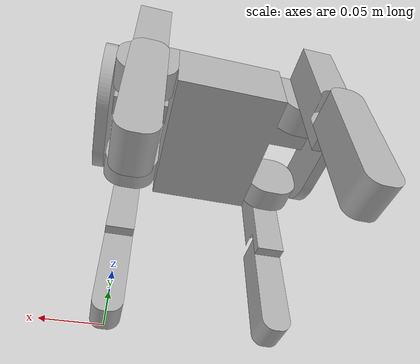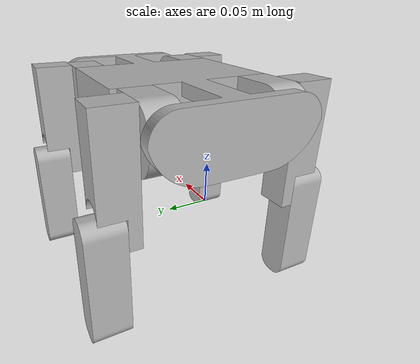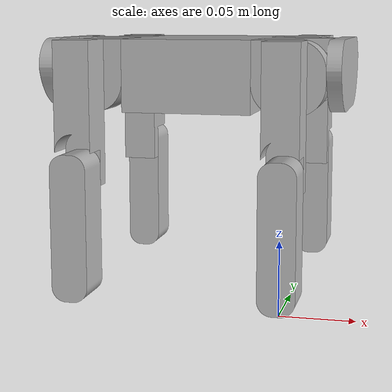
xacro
<?xml version="1.0" ?>
<robot name="quad_robot" xmlns:xacro="http://www.ros.org/wiki/xacro">

<xacro:include filename="$(find quad_robot_description)/urdf/materials.xacro" />
<xacro:include filename="$(find quad_robot_description)/urdf/quad_robot.trans" />
<xacro:include filename="$(find quad_robot_description)/urdf/quad_robot.gazebo" />
<link name="base_link">
  <inertial>
    <origin xyz="-0.0700000000000002 0.08926755092273143 0.153876888013964" rpy="0 0 0"/>
    <mass value="0.685741132753167"/>
    <inertia ixx="0.000977" iyy="0.001714" izz="0.002403" ixy="-0.0" iyz="0.0" ixz="-0.0"/>
  </inertial>
  <visual>
    <origin xyz="0 0 0" rpy="0 0 0"/>
    <geometry>
      <mesh filename="file://$(find quad_robot_description)/meshes/base_link.stl" scale="0.001 0.001 0.001"/>
    </geometry>
    <material name="silver"/>
  </visual>
  <collision>
    <origin xyz="0 0 0" rpy="0 0 0"/>
    <geometry>
      <mesh filename="file://$(find quad_robot_description)/meshes/base_link.stl" scale="0.001 0.001 0.001"/>
    </geometry>
  </collision>
</link>

<link name="bl_shin_link_1">
  <inertial>
    <origin xyz="5.770905402621389e-15 0.004888703494644792 -0.03833090663339933" rpy="0 0 0"/>
    <mass value="0.07085398163397447"/>
    <inertia ixx="6e-05" iyy="5.8e-05" izz="9e-06" ixy="-0.0" iyz="0.0" ixz="-0.0"/>
  </inertial>
  <visual>
    <origin xyz="0.0 0.003232 -0.090732" rpy="0 0 0"/>
    <geometry>
      <mesh filename="file://$(find quad_robot_description)/meshes/bl_shin_link_1.stl" scale="0.001 0.001 0.001"/>
    </geometry>
    <material name="silver"/>
  </visual>
  <collision>
    <origin xyz="0.0 0.003232 -0.090732" rpy="0 0 0"/>
    <geometry>
      <mesh filename="file://$(find quad_robot_description)/meshes/bl_shin_link_1.stl" scale="0.001 0.001 0.001"/>
    </geometry>
  </collision>
</link>

<link name="bl_leg_link_1">
  <inertial>
    <origin xyz="1.4137324648158097e-14 0.006238206362926059 -0.016886305719521988" rpy="0 0 0"/>
    <mass value="0.057591261478765976"/>
    <inertia ixx="4.4e-05" iyy="4.3e-05" izz="8e-06" ixy="0.0" iyz="3e-06" ixz="0.0"/>
  </inertial>
  <visual>
    <origin xyz="0.0 -0.006768 -0.153232" rpy="0 0 0"/>
    <geometry>
      <mesh filename="file://$(find quad_robot_description)/meshes/bl_leg_link_1.stl" scale="0.001 0.001 0.001"/>
    </geometry>
    <material name="silver"/>
  </visual>
  <collision>
    <origin xyz="0.0 -0.006768 -0.153232" rpy="0 0 0"/>
    <geometry>
      <mesh filename="file://$(find quad_robot_description)/meshes/bl_leg_link_1.stl" scale="0.001 0.001 0.001"/>
    </geometry>
  </collision>
</link>

<link name="bl_thigh_link_1">
  <inertial>
    <origin xyz="0.0433271050904814 -0.0005974221436028312 -0.013857298738867513" rpy="0 0 0"/>
    <mass value="0.05920353755551334"/>
    <inertia ixx="1.4e-05" iyy="2.3e-05" izz="1.6e-05" ixy="0.0" iyz="-0.0" ixz="2e-06"/>
  </inertial>
  <visual>
    <origin xyz="0.045 -0.039268 -0.168232" rpy="0 0 0"/>
    <geometry>
      <mesh filename="file://$(find quad_robot_description)/meshes/bl_thigh_link_1.stl" scale="0.001 0.001 0.001"/>
    </geometry>
    <material name="silver"/>
  </visual>
  <collision>
    <origin xyz="0.045 -0.039268 -0.168232" rpy="0 0 0"/>
    <geometry>
      <mesh filename="file://$(find quad_robot_description)/meshes/bl_thigh_link_1.stl" scale="0.001 0.001 0.001"/>
    </geometry>
  </collision>
</link>

<link name="fr_thigh_link_1">
  <inertial>
    <origin xyz="-0.043327105090512935 -0.004403476010929275 -0.013857298738867652" rpy="0 0 0"/>
    <mass value="0.05920353755551319"/>
    <inertia ixx="1.4e-05" iyy="2.3e-05" izz="1.6e-05" ixy="0.0" iyz="0.0" ixz="-2e-06"/>
  </inertial>
  <visual>
    <origin xyz="0.095 -0.139268 -0.168232" rpy="0 0 0"/>
    <geometry>
      <mesh filename="file://$(find quad_robot_description)/meshes/fr_thigh_link_1.stl" scale="0.001 0.001 0.001"/>
    </geometry>
    <material name="silver"/>
  </visual>
  <collision>
    <origin xyz="0.095 -0.139268 -0.168232" rpy="0 0 0"/>
    <geometry>
      <mesh filename="file://$(find quad_robot_description)/meshes/fr_thigh_link_1.stl" scale="0.001 0.001 0.001"/>
    </geometry>
  </collision>
</link>

<link name="fr_leg_link_1">
  <inertial>
    <origin xyz="1.329492071988625e-14 -0.0062391045174579884 -0.01688630571952185" rpy="0 0 0"/>
    <mass value="0.057591261478765976"/>
    <inertia ixx="4.4e-05" iyy="4.3e-05" izz="8e-06" ixy="0.0" iyz="-3e-06" ixz="0.0"/>
  </inertial>
  <visual>
    <origin xyz="0.14 -0.166768 -0.153232" rpy="0 0 0"/>
    <geometry>
      <mesh filename="file://$(find quad_robot_description)/meshes/fr_leg_link_1.stl" scale="0.001 0.001 0.001"/>
    </geometry>
    <material name="silver"/>
  </visual>
  <collision>
    <origin xyz="0.14 -0.166768 -0.153232" rpy="0 0 0"/>
    <geometry>
      <mesh filename="file://$(find quad_robot_description)/meshes/fr_leg_link_1.stl" scale="0.001 0.001 0.001"/>
    </geometry>
  </collision>
</link>

<link name="fr_shin_link_1">
  <inertial>
    <origin xyz="9.547918011776346e-15 -0.004889601649175651 -0.03833090663339895" rpy="0 0 0"/>
    <mass value="0.07085398163397447"/>
    <inertia ixx="6e-05" iyy="5.8e-05" izz="9e-06" ixy="0.0" iyz="-0.0" ixz="-0.0"/>
  </inertial>
  <visual>
    <origin xyz="0.14 -0.176768 -0.090732" rpy="0 0 0"/>
    <geometry>
      <mesh filename="file://$(find quad_robot_description)/meshes/fr_shin_link_1.stl" scale="0.001 0.001 0.001"/>
    </geometry>
    <material name="silver"/>
  </visual>
  <collision>
    <origin xyz="0.14 -0.176768 -0.090732" rpy="0 0 0"/>
    <geometry>
      <mesh filename="file://$(find quad_robot_description)/meshes/fr_shin_link_1.stl" scale="0.001 0.001 0.001"/>
    </geometry>
  </collision>
</link>

<link name="br_thigh_link_1">
  <inertial>
    <origin xyz="0.043327105090512484 0.0005965239890702023 -0.01385729873886582" rpy="0 0 0"/>
    <mass value="0.05920353755551319"/>
    <inertia ixx="1.4e-05" iyy="2.3e-05" izz="1.6e-05" ixy="-0.0" iyz="0.0" ixz="2e-06"/>
  </inertial>
  <visual>
    <origin xyz="0.045 -0.139268 -0.168232" rpy="0 0 0"/>
    <geometry>
      <mesh filename="file://$(find quad_robot_description)/meshes/br_thigh_link_1.stl" scale="0.001 0.001 0.001"/>
    </geometry>
    <material name="silver"/>
  </visual>
  <collision>
    <origin xyz="0.045 -0.139268 -0.168232" rpy="0 0 0"/>
    <geometry>
      <mesh filename="file://$(find quad_robot_description)/meshes/br_thigh_link_1.stl" scale="0.001 0.001 0.001"/>
    </geometry>
  </collision>
</link>

<link name="fl_thigh_link_1">
  <inertial>
    <origin xyz="-0.043327105090508244 -0.0005974221436033794 -0.013857298738869095" rpy="0 0 0"/>
    <mass value="0.05920353755551325"/>
    <inertia ixx="1.4e-05" iyy="2.3e-05" izz="1.6e-05" ixy="-0.0" iyz="-0.0" ixz="-2e-06"/>
  </inertial>
  <visual>
    <origin xyz="0.095 -0.039268 -0.168232" rpy="0 0 0"/>
    <geometry>
      <mesh filename="file://$(find quad_robot_description)/meshes/fl_thigh_link_1.stl" scale="0.001 0.001 0.001"/>
    </geometry>
    <material name="silver"/>
  </visual>
  <collision>
    <origin xyz="0.095 -0.039268 -0.168232" rpy="0 0 0"/>
    <geometry>
      <mesh filename="file://$(find quad_robot_description)/meshes/fl_thigh_link_1.stl" scale="0.001 0.001 0.001"/>
    </geometry>
  </collision>
</link>

<link name="br_leg_link_1">
  <inertial>
    <origin xyz="1.4152029837641958e-14 -0.006239104517458266 -0.01688630571951996" rpy="0 0 0"/>
    <mass value="0.057591261478765976"/>
    <inertia ixx="4.4e-05" iyy="4.3e-05" izz="8e-06" ixy="0.0" iyz="-3e-06" ixz="0.0"/>
  </inertial>
  <visual>
    <origin xyz="0.0 -0.171768 -0.153232" rpy="0 0 0"/>
    <geometry>
      <mesh filename="file://$(find quad_robot_description)/meshes/br_leg_link_1.stl" scale="0.001 0.001 0.001"/>
    </geometry>
    <material name="silver"/>
  </visual>
  <collision>
    <origin xyz="0.0 -0.171768 -0.153232" rpy="0 0 0"/>
    <geometry>
      <mesh filename="file://$(find quad_robot_description)/meshes/br_leg_link_1.stl" scale="0.001 0.001 0.001"/>
    </geometry>
  </collision>
</link>

<link name="br_shin_link_1">
  <inertial>
    <origin xyz="6.78740034932346e-15 -0.004889601649175596 -0.03833090663339699" rpy="0 0 0"/>
    <mass value="0.07085398163397447"/>
    <inertia ixx="6e-05" iyy="5.8e-05" izz="9e-06" ixy="0.0" iyz="-0.0" ixz="-0.0"/>
  </inertial>
  <visual>
    <origin xyz="-0.0 -0.181768 -0.090732" rpy="0 0 0"/>
    <geometry>
      <mesh filename="file://$(find quad_robot_description)/meshes/br_shin_link_1.stl" scale="0.001 0.001 0.001"/>
    </geometry>
    <material name="silver"/>
  </visual>
  <collision>
    <origin xyz="-0.0 -0.181768 -0.090732" rpy="0 0 0"/>
    <geometry>
      <mesh filename="file://$(find quad_robot_description)/meshes/br_shin_link_1.stl" scale="0.001 0.001 0.001"/>
    </geometry>
  </collision>
</link>

<link name="fl_leg_link_1">
  <inertial>
    <origin xyz="1.915134717478395e-14 0.00623820636292575 -0.016886305719524125" rpy="0 0 0"/>
    <mass value="0.057591261478765976"/>
    <inertia ixx="4.4e-05" iyy="4.3e-05" izz="8e-06" ixy="0.0" iyz="3e-06" ixz="0.0"/>
  </inertial>
  <visual>
    <origin xyz="0.14 -0.006768 -0.153232" rpy="0 0 0"/>
    <geometry>
      <mesh filename="file://$(find quad_robot_description)/meshes/fl_leg_link_1.stl" scale="0.001 0.001 0.001"/>
    </geometry>
    <material name="silver"/>
  </visual>
  <collision>
    <origin xyz="0.14 -0.006768 -0.153232" rpy="0 0 0"/>
    <geometry>
      <mesh filename="file://$(find quad_robot_description)/meshes/fl_leg_link_1.stl" scale="0.001 0.001 0.001"/>
    </geometry>
  </collision>
</link>

<link name="fl_shin_link_1">
  <inertial>
    <origin xyz="1.1796119636642288e-14 0.00488870349464599 -0.038330906633401565" rpy="0 0 0"/>
    <mass value="0.07085398163397423"/>
    <inertia ixx="6e-05" iyy="5.8e-05" izz="9e-06" ixy="0.0" iyz="0.0" ixz="-0.0"/>
  </inertial>
  <visual>
    <origin xyz="0.14 0.003232 -0.090732" rpy="0 0 0"/>
    <geometry>
      <mesh filename="file://$(find quad_robot_description)/meshes/fl_shin_link_1.stl" scale="0.001 0.001 0.001"/>
    </geometry>
    <material name="silver"/>
  </visual>
  <collision>
    <origin xyz="0.14 0.003232 -0.090732" rpy="0 0 0"/>
    <geometry>
      <mesh filename="file://$(find quad_robot_description)/meshes/fl_shin_link_1.stl" scale="0.001 0.001 0.001"/>
    </geometry>
  </collision>
</link>

<joint name="bl_shin_link_to_bl_leg_link" type="revolute">
  <origin xyz="0.0 -0.01 -0.0625" rpy="0 0 0"/>
  <parent link="bl_leg_link_1"/>
  <child link="bl_shin_link_1"/>
  <axis xyz="-0.0 1.0 -0.0"/>
  <limit upper="1.570796" lower="-1.570796" effort="100" velocity="100"/>
</joint>

<joint name="bl_leg_link_to_bl_thigh_link" type="revolute">
  <origin xyz="0.045 -0.0325 -0.015" rpy="0 0 0"/>
  <parent link="bl_thigh_link_1"/>
  <child link="bl_leg_link_1"/>
  <axis xyz="0.0 -1.0 0.0"/>
  <limit upper="1.570796" lower="-1.570796" effort="100" velocity="100"/>
</joint>

<joint name="bl_thigh_link_to_base_link" type="revolute">
  <origin xyz="-0.045 0.039268 0.168232" rpy="0 0 0"/>
  <parent link="base_link"/>
  <child link="bl_thigh_link_1"/>
  <axis xyz="1.0 0.0 0.0"/>
  <limit upper="1.570796" lower="-1.570796" effort="100" velocity="100"/>
</joint>

<joint name="fr_thigh_link_to_base_link" type="revolute">
  <origin xyz="-0.095 0.139268 0.168232" rpy="0 0 0"/>
  <parent link="base_link"/>
  <child link="fr_thigh_link_1"/>
  <axis xyz="1.0 0.0 0.0"/>
  <limit upper="1.570796" lower="-1.570796" effort="100" velocity="100"/>
</joint>

<joint name="fr_leg_link_to_fr_thigh_link" type="revolute">
  <origin xyz="-0.045 0.0275 -0.015" rpy="0 0 0"/>
  <parent link="fr_thigh_link_1"/>
  <child link="fr_leg_link_1"/>
  <axis xyz="0.0 1.0 0.0"/>
  <limit upper="1.570796" lower="-1.570796" effort="100" velocity="100"/>
</joint>

<joint name="fr_shin_link_to_fr_leg_link" type="revolute">
  <origin xyz="0.0 0.01 -0.0625" rpy="0 0 0"/>
  <parent link="fr_leg_link_1"/>
  <child link="fr_shin_link_1"/>
  <axis xyz="0.0 1.0 0.0"/>
  <limit upper="1.570796" lower="-1.570796" effort="100" velocity="100"/>
</joint>

<joint name="br_thigh_link_to_base_link" type="revolute">
  <origin xyz="-0.045 0.139268 0.168232" rpy="0 0 0"/>
  <parent link="base_link"/>
  <child link="br_thigh_link_1"/>
  <axis xyz="-1.0 -0.0 -0.0"/>
  <limit upper="1.570796" lower="-1.570796" effort="100" velocity="100"/>
</joint>

<joint name="fl_thigh_link_to_base_link" type="revolute">
  <origin xyz="-0.095 0.039268 0.168232" rpy="0 0 0"/>
  <parent link="base_link"/>
  <child link="fl_thigh_link_1"/>
  <axis xyz="1.0 0.0 0.0"/>
  <limit upper="1.570796" lower="-1.570796" effort="100" velocity="100"/>
</joint>

<joint name="br_leg_link_to_br_thigh_link" type="revolute">
  <origin xyz="0.045 0.0325 -0.015" rpy="0 0 0"/>
  <parent link="br_thigh_link_1"/>
  <child link="br_leg_link_1"/>
  <axis xyz="0.0 -1.0 -0.0"/>
  <limit upper="1.570796" lower="-1.570796" effort="100" velocity="100"/>
</joint>

<joint name="br_shin_link_to_br_leg_link" type="revolute">
  <origin xyz="0.0 0.01 -0.0625" rpy="0 0 0"/>
  <parent link="br_leg_link_1"/>
  <child link="br_shin_link_1"/>
  <axis xyz="0.0 1.0 0.0"/>
  <limit upper="1.570796" lower="-1.570796" effort="100" velocity="100"/>
</joint>

<joint name="fl_leg_link_to_fl_thigh_link" type="revolute">
  <origin xyz="-0.045 -0.0325 -0.015" rpy="0 0 0"/>
  <parent link="fl_thigh_link_1"/>
  <child link="fl_leg_link_1"/>
  <axis xyz="-0.0 1.0 0.0"/>
  <limit upper="1.570796" lower="-1.570796" effort="100" velocity="100"/>
</joint>

<joint name="fl_shin_link_to_fl_leg_link" type="revolute">
  <origin xyz="0.0 -0.01 -0.0625" rpy="0 0 0"/>
  <parent link="fl_leg_link_1"/>
  <child link="fl_shin_link_1"/>
  <axis xyz="0.0 1.0 0.0"/>
  <limit upper="1.570796" lower="-1.570796" effort="100" velocity="100"/>
</joint>

</robot>

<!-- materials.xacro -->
<robot name="quad_robot" xmlns:xacro="http://www.ros.org/wiki/xacro" >

<material name="silver">
  <color rgba="0.700 0.700 0.700 1.000"/>
</material>

</robot>

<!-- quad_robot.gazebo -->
<robot name="quad_robot" xmlns:xacro="http://www.ros.org/wiki/xacro" >

<xacro:property name="body_color" value="Gazebo/Silver" />

<gazebo>
  <plugin name="control" filename="libgazebo_ros_control.so"/>
</gazebo>
<gazebo reference="base_link">
  <material>${body_color}</material>
  <mu1>0.2</mu1>
  <mu2>0.2</mu2>
  <self_collide>true</self_collide>
  <gravity>true</gravity>
</gazebo>

<gazebo reference="bl_shin_link_1">
  <material>${body_color}</material>
  <mu1>0.2</mu1>
  <mu2>0.2</mu2>
  <self_collide>true</self_collide>
</gazebo>

<gazebo reference="bl_leg_link_1">
  <material>${body_color}</material>
  <mu1>0.2</mu1>
  <mu2>0.2</mu2>
  <self_collide>true</self_collide>
</gazebo>

<gazebo reference="bl_thigh_link_1">
  <material>${body_color}</material>
  <mu1>0.2</mu1>
  <mu2>0.2</mu2>
  <self_collide>true</self_collide>
</gazebo>

<gazebo reference="fr_thigh_link_1">
  <material>${body_color}</material>
  <mu1>0.2</mu1>
  <mu2>0.2</mu2>
  <self_collide>true</self_collide>
</gazebo>

<gazebo reference="fr_leg_link_1">
  <material>${body_color}</material>
  <mu1>0.2</mu1>
  <mu2>0.2</mu2>
  <self_collide>true</self_collide>
</gazebo>

<gazebo reference="fr_shin_link_1">
  <material>${body_color}</material>
  <mu1>0.2</mu1>
  <mu2>0.2</mu2>
  <self_collide>true</self_collide>
</gazebo>

<gazebo reference="br_thigh_link_1">
  <material>${body_color}</material>
  <mu1>0.2</mu1>
  <mu2>0.2</mu2>
  <self_collide>true</self_collide>
</gazebo>

<gazebo reference="fl_thigh_link_1">
  <material>${body_color}</material>
  <mu1>0.2</mu1>
  <mu2>0.2</mu2>
  <self_collide>true</self_collide>
</gazebo>

<gazebo reference="br_leg_link_1">
  <material>${body_color}</material>
  <mu1>0.2</mu1>
  <mu2>0.2</mu2>
  <self_collide>true</self_collide>
</gazebo>

<gazebo reference="br_shin_link_1">
  <material>${body_color}</material>
  <mu1>0.2</mu1>
  <mu2>0.2</mu2>
  <self_collide>true</self_collide>
</gazebo>

<gazebo reference="fl_leg_link_1">
  <material>${body_color}</material>
  <mu1>0.2</mu1>
  <mu2>0.2</mu2>
  <self_collide>true</self_collide>
</gazebo>

<gazebo reference="fl_shin_link_1">
  <material>${body_color}</material>
  <mu1>0.2</mu1>
  <mu2>0.2</mu2>
  <self_collide>true</self_collide>
</gazebo>

</robot>
